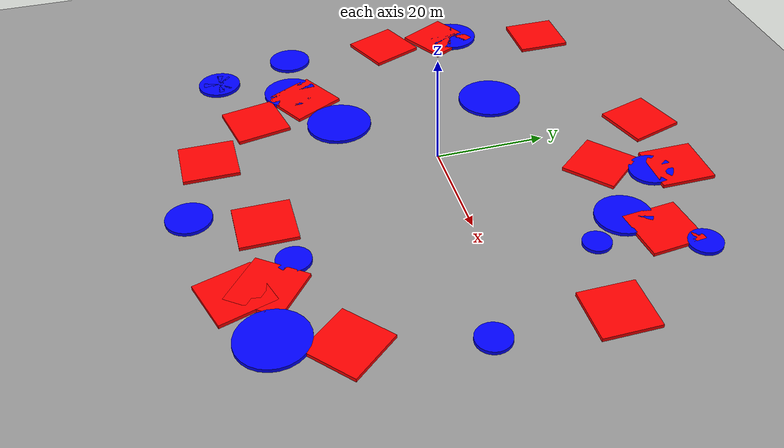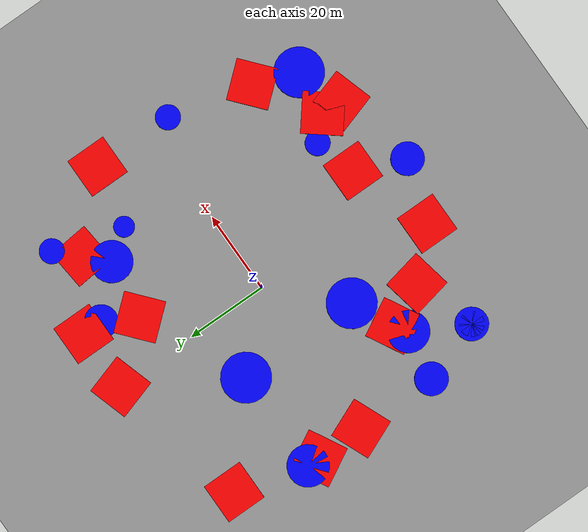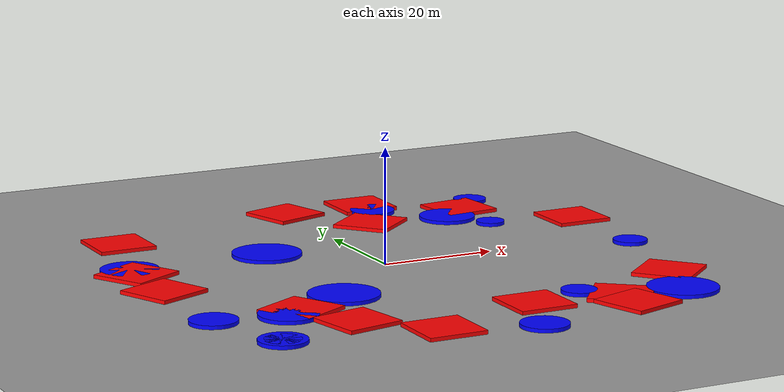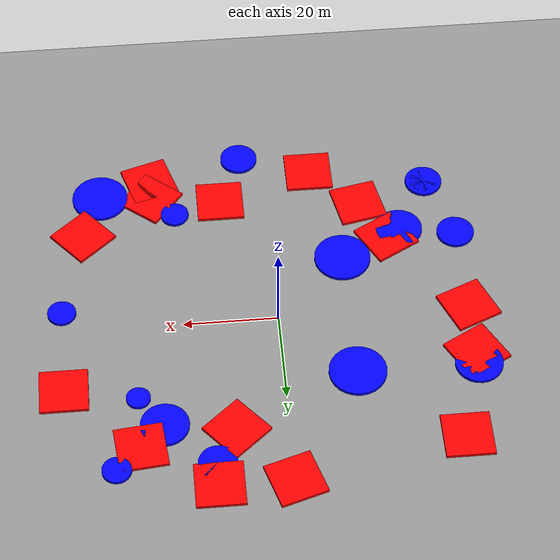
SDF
<sdf version="1.9">
 <world name="default">
  <model name="ground_plane">
   <static>true</static>
   <link name="link">
    <collision name="collision">
     <geometry><plane><normal>0 0 1</normal><size>100 100</size></plane></geometry>
     <surface><contact><collide_without_contact_bitmask>0x01</collide_without_contact_bitmask></contact></surface>
    </collision>
    <visual name="visual">
     <geometry><plane><normal>0 0 1</normal><size>100 100</size></plane></geometry>
     <material><ambient>0.6 0.6 0.6 1</ambient><diffuse>0.6 0.6 0.6 1</diffuse></material>
    </visual>
   </link>
  </model>
  <model name="moving_cylinder_1">
   <pose>25.0 25.0 0 0 0 0</pose>
   <link name="moving_link">
    <gravity>false</gravity>
    <visual name="visual">
     <geometry><cylinder><radius>5.0</radius><length>1.0</length></cylinder></geometry>
     <material><ambient>0 0 1 1</ambient></material>
    </visual>
   </link>
   <motion type="legacy-linear">
    <link_name>moving_link</link_name>
    <direction>0 -1 0</direction>
    <amplitude>1000.5</amplitude>
    <speed>0.5</speed>
   </motion>
  </model>
  <model name="moving_cylinder_2">
   <pose>-15.0 -15.0 0 0 0 0</pose>
   <link name="moving_link">
    <gravity>false</gravity>
    <visual name="visual">
     <geometry><cylinder><radius>6.0</radius><length>1.0</length></cylinder></geometry>
     <material><ambient>0 0 1 1</ambient></material>
    </visual>
   </link>
   <motion type="legacy-linear">
    <link_name>moving_link</link_name>
    <direction>0 1 0</direction>
    <amplitude>1000.5</amplitude>
    <speed>0.5</speed>
   </motion>
  </model>
  <model name="moving_cylinder_3">
   <pose>-35.0 -35.0 0 0 0 0</pose>
   <link name="moving_link">
    <gravity>false</gravity>
    <visual name="visual">
     <geometry><cylinder><radius>4.0</radius><length>1.0</length></cylinder></geometry>
     <material><ambient>0 0 1 1</ambient></material>
    </visual>
   </link>
   <motion type="legacy-linear">
    <link_name>moving_link</link_name>
    <direction>1 0 0</direction>
    <amplitude>1000.5</amplitude>
    <speed>0.5</speed>
   </motion>
  </model>
  <model name="moving_cylinder_4">
   <pose>35.0 35.0 0 0 0 0</pose>
   <link name="moving_link">
    <gravity>false</gravity>
    <visual name="visual">
     <geometry><cylinder><radius>3.0</radius><length>1.0</length></cylinder></geometry>
     <material><ambient>0 0 1 1</ambient></material>
    </visual>
   </link>
   <motion type="legacy-circular">
    <link_name>moving_link</link_name>
    <direction>-1 0 0</direction>
    <amplitude>1000.5</amplitude>
    <speed>0.5</speed>
   </motion>
  </model>
  <model name="moving_cylinder_5">
   <pose>-35.0 -35.0 0 0 0 0</pose>
   <link name="moving_link">
    <gravity>false</gravity>
    <visual name="visual">
     <geometry><cylinder><radius>3.0</radius><length>1.0</length></cylinder></geometry>
     <material><ambient>0 0 1 1</ambient></material>
    </visual>
   </link>
   <motion type="legacy-circular">
    <link_name>moving_link</link_name>
    <direction>0 1 0</direction>
    <amplitude>500.5</amplitude>
    <speed>0.8</speed>
   </motion>
  </model>
  <model name="moving_cylinder_6">
   <pose>15.0 35.0 0 0 0 0</pose>
   <link name="moving_link">
    <gravity>false</gravity>
    <visual name="visual">
     <geometry><cylinder><radius>4.0</radius><length>1.0</length></cylinder></geometry>
     <material><ambient>0 0 1 1</ambient></material>
    </visual>
   </link>
   <motion type="legacy-linear">
    <link_name>moving_link</link_name>
    <direction>-1 0 0</direction>
    <amplitude>1000.5</amplitude>
    <speed>0.5</speed>
   </motion>
  </model>
  <model name="moving_box_1">
   <pose>10.0 -33.0 0 0 0 0</pose>
   <link name="moving_link">
    <gravity>false</gravity>
    <visual name="visual">
     <geometry><box><size>10.0 10.0 1.0</size></box></geometry>
     <material><ambient>1 0 0 1</ambient></material>
    </visual>
   </link>
   <motion type="legacy-linear">
    <link_name>moving_link</link_name>
    <direction>0 1 0</direction>
    <amplitude>1000.5</amplitude>
    <speed>0.5</speed>
   </motion>
  </model>
  <model name="moving_box_2">
   <pose>-35.1 32.5 0 0 0 0</pose>
   <link name="moving_link">
    <gravity>false</gravity>
    <visual name="visual">
     <geometry><box><size>10.0 10.0 1.0</size></box></geometry>
     <material><ambient>1 0 0 1</ambient></material>
    </visual>
   </link>
   <motion type="legacy-linear">
    <link_name>moving_link</link_name>
    <direction>0 -1 0</direction>
    <amplitude>1000.5</amplitude>
    <speed>0.5</speed>
   </motion>
  </model>
  <model name="moving_box_3">
   <pose>10.7 27.1 0 0 0 0.707</pose>
   <link name="moving_link">
    <gravity>false</gravity>
    <visual name="visual">
     <geometry><box><size>10.0 10.0 1.0</size></box></geometry>
     <material><ambient>1 0 0 1</ambient></material>
    </visual>
   </link>
   <motion type="legacy-linear">
    <link_name>moving_link</link_name>
    <direction>1 0 0</direction>
    <amplitude>1000.5</amplitude>
    <speed>0.5</speed>
   </motion>
  </model>
  <model name="moving_box_4">
   <pose>40.0 -25.5 0 0 0 0.707</pose>
   <link name="moving_link">
    <gravity>false</gravity>
    <visual name="visual">
     <geometry><box><size>10.0 10.0 1.0</size></box></geometry>
     <material><ambient>1 0 0 1</ambient></material>
    </visual>
   </link>
   <motion type="legacy-linear">
    <link_name>moving_link</link_name>
    <direction>0 1 0</direction>
    <amplitude>1000.5</amplitude>
    <speed>0.5</speed>
   </motion>
  </model>
  <model name="moving_cylinder_7">
   <pose>-40.0 15.0 0 0 0 0</pose>
   <link name="moving_link">
    <gravity>false</gravity>
    <visual name="visual">
     <geometry><cylinder><radius>5.0</radius><length>1.0</length></cylinder></geometry>
     <material><ambient>0 0 1 1</ambient></material>
    </visual>
   </link>
   <motion type="legacy-linear">
    <link_name>moving_link</link_name>
    <direction>1 0 0</direction>
    <amplitude>800.5</amplitude>
    <speed>0.5</speed>
   </motion>
  </model>
  <model name="moving_cylinder_8">
   <pose>5.0 -45.0 0 0 0 0</pose>
   <link name="moving_link">
    <gravity>false</gravity>
    <visual name="visual">
     <geometry><cylinder><radius>4.0</radius><length>1.0</length></cylinder></geometry>
     <material><ambient>0 0 1 1</ambient></material>
    </visual>
   </link>
   <motion type="legacy-linear">
    <link_name>moving_link</link_name>
    <direction>0 1 0</direction>
    <amplitude>900.5</amplitude>
    <speed>0.5</speed>
   </motion>
  </model>
  <model name="moving_cylinder_9">
   <pose>-15.0 15.0 0 0 0 0</pose>
   <link name="moving_link">
    <gravity>false</gravity>
    <visual name="visual">
     <geometry><cylinder><radius>6.0</radius><length>1.0</length></cylinder></geometry>
     <material><ambient>0 0 1 1</ambient></material>
    </visual>
   </link>
   <motion type="legacy-linear">
    <link_name>moving_link</link_name>
    <direction>1 1 0</direction>
    <amplitude>350.5</amplitude>
    <speed>0.5</speed>
   </motion>
  </model>
  <model name="moving_cylinder_10">
   <pose>45.0 -5.0 0 0 0 0</pose>
   <link name="moving_link">
    <gravity>false</gravity>
    <visual name="visual">
     <geometry><cylinder><radius>3.0</radius><length>1.0</length></cylinder></geometry>
     <material><ambient>0 0 1 1</ambient></material>
    </visual>
   </link>
   <motion type="legacy-circular">
    <link_name>moving_link</link_name>
    <direction>0 -1 0</direction>
    <amplitude>600.5</amplitude>
    <speed>0.6</speed>
   </motion>
  </model>
  <model name="moving_box_5">
   <pose>45.0 15.0 0 0 0 0</pose>
   <link name="moving_link">
    <gravity>false</gravity>
    <visual name="visual">
     <geometry><box><size>10.0 10.0 1.0</size></box></geometry>
     <material><ambient>1 0 0 1</ambient></material>
    </visual>
   </link>
   <motion type="legacy-linear">
    <link_name>moving_link</link_name>
    <direction>-1 0 0</direction>
    <amplitude>1000.5</amplitude>
    <speed>0.5</speed>
   </motion>
  </model>
  <model name="moving_box_6">
   <pose>0.0 40.0 0 0 0 0.3</pose>
   <link name="moving_link">
    <gravity>false</gravity>
    <visual name="visual">
     <geometry><box><size>10.0 10.0 1.0</size></box></geometry>
     <material><ambient>1 0 0 1</ambient></material>
    </visual>
   </link>
   <motion type="legacy-linear">
    <link_name>moving_link</link_name>
    <direction>0 -1 0</direction>
    <amplitude>400.5</amplitude>
    <speed>0.4</speed>
   </motion>
  </model>
  <model name="moving_box_7">
   <pose>-25.0 -20.0 0 0 0 0.5</pose>
   <link name="moving_link">
    <gravity>false</gravity>
    <visual name="visual">
     <geometry><box><size>10.0 10.0 1.0</size></box></geometry>
     <material><ambient>1 0 0 1</ambient></material>
    </visual>
   </link>
   <motion type="legacy-linear">
    <link_name>moving_link</link_name>
    <direction>1 0 0</direction>
    <amplitude>750.5</amplitude>
    <speed>0.6</speed>
   </motion>
  </model>
  <model name="moving_box_8">
   <pose>25.0 -35.0 0 0 0 0.9</pose>
   <link name="moving_link">
    <gravity>false</gravity>
    <visual name="visual">
     <geometry><box><size>10.0 10.0 1.0</size></box></geometry>
     <material><ambient>1 0 0 1</ambient></material>
    </visual>
   </link>
   <motion type="legacy-linear">
    <link_name>moving_link</link_name>
    <direction>-1 1 0</direction>
    <amplitude>350.5</amplitude>
    <speed>0.5</speed>
   </motion>
  </model>
  <model name="moving_box_9">
   <pose>-10.0 -40.0 0 0 0 0</pose>
   <link name="moving_link">
    <gravity>false</gravity>
    <visual name="visual">
     <geometry><box><size>10.0 10.0 1.0</size></box></geometry>
     <material><ambient>1 0 0 1</ambient></material>
    </visual>
   </link>
   <motion type="legacy-linear">
    <link_name>moving_link</link_name>
    <direction>0 1 0</direction>
    <amplitude>950.5</amplitude>
    <speed>0.6</speed>
   </motion>
  </model>
  <model name="moving_box_10">
   <pose>-40.0 0.0 0 0 0 0.4</pose>
   <link name="moving_link">
    <gravity>false</gravity>
    <visual name="visual">
     <geometry><box><size>10.0 10.0 1.0</size></box></geometry>
     <material><ambient>1 0 0 1</ambient></material>
    </visual>
   </link>
   <motion type="legacy-linear">
    <link_name>moving_link</link_name>
    <direction>1 0 0</direction>
    <amplitude>350.5</amplitude>
    <speed>0.5</speed>
   </motion>
  </model>
  <model name="moving_cylinder_11">
   <pose>20.0 -30.0 0 0 0 0</pose>
   <link name="moving_link">
    <gravity>false</gravity>
    <visual name="visual">
     <geometry><cylinder><radius>3.0</radius><length>1.0</length></cylinder></geometry>
     <material><ambient>0 0 1 1</ambient></material>
    </visual>
   </link>
   <motion type="legacy-linear">
    <link_name>moving_link</link_name>
    <direction>1 0 0</direction>
    <amplitude>1000.5</amplitude>
    <speed>0.4</speed>
   </motion>
  </model>
  <model name="moving_cylinder_12">
   <pose>-28.0 -22.0 0 0 0 0</pose>
   <link name="moving_link">
    <gravity>false</gravity>
    <visual name="visual">
     <geometry><cylinder><radius>5.0</radius><length>1.0</length></cylinder></geometry>
     <material><ambient>0 0 1 1</ambient></material>
    </visual>
   </link>
   <motion type="legacy-linear">
    <link_name>moving_link</link_name>
    <direction>0 1 0</direction>
    <amplitude>1000.5</amplitude>
    <speed>0.3</speed>
   </motion>
  </model>
  <model name="moving_cylinder_13">
   <pose>30.0 18.0 0 0 0 0</pose>
   <link name="moving_link">
    <gravity>false</gravity>
    <visual name="visual">
     <geometry><cylinder><radius>2.5</radius><length>1.0</length></cylinder></geometry>
     <material><ambient>0 0 1 1</ambient></material>
    </visual>
   </link>
   <motion type="legacy-linear">
    <link_name>moving_link</link_name>
    <direction>-1 0 0</direction>
    <amplitude>1000.5</amplitude>
    <speed>0.6</speed>
   </motion>
  </model>
  <model name="moving_cylinder_14">
   <pose>-40.0 -20.0 0 0 0 0</pose>
   <link name="moving_link">
    <gravity>false</gravity>
    <visual name="visual">
     <geometry><cylinder><radius>4.0</radius><length>1.0</length></cylinder></geometry>
     <material><ambient>0 0 1 1</ambient></material>
    </visual>
   </link>
   <motion type="legacy-circular">
    <link_name>moving_link</link_name>
    <direction>0 -1 0</direction>
    <amplitude>500.5</amplitude>
    <speed>0.7</speed>
   </motion>
  </model>
  <model name="moving_cylinder_15">
   <pose>36.0 -36.0 0 0 0 0</pose>
   <link name="moving_link">
    <gravity>false</gravity>
    <visual name="visual">
     <geometry><cylinder><radius>6.0</radius><length>1.0</length></cylinder></geometry>
     <material><ambient>0 0 1 1</ambient></material>
    </visual>
   </link>
   <motion type="legacy-circular">
    <link_name>moving_link</link_name>
    <direction>1 0 0</direction>
    <amplitude>1000.5</amplitude>
    <speed>0.5</speed>
   </motion>
  </model>
  <model name="moving_box_11">
   <pose>15.0 40.0 0 0 0 0</pose>
   <link name="moving_link">
    <gravity>false</gravity>
    <visual name="visual">
     <geometry><box><size>10.0 10.0 1.0</size></box></geometry>
     <material><ambient>1 0 0 1</ambient></material>
    </visual>
   </link>
   <motion type="legacy-linear">
    <link_name>moving_link</link_name>
    <direction>0 -1 0</direction>
    <amplitude>1000.5</amplitude>
    <speed>0.6</speed>
   </motion>
  </model>
  <model name="moving_box_12">
   <pose>-40.0 12.0 0 0 0 0.5</pose>
   <link name="moving_link">
    <gravity>false</gravity>
    <visual name="visual">
     <geometry><box><size>10.0 10.0 1.0</size></box></geometry>
     <material><ambient>1 0 0 1</ambient></material>
    </visual>
   </link>
   <motion type="legacy-linear">
    <link_name>moving_link</link_name>
    <direction>1 0 0</direction>
    <amplitude>1000.5</amplitude>
    <speed>0.5</speed>
   </motion>
  </model>
  <model name="moving_box_13">
   <pose>25.0 -40.0 0 0 0 0.3</pose>
   <link name="moving_link">
    <gravity>false</gravity>
    <visual name="visual">
     <geometry><box><size>10.0 10.0 1.0</size></box></geometry>
     <material><ambient>1 0 0 1</ambient></material>
    </visual>
   </link>
   <motion type="legacy-linear">
    <link_name>moving_link</link_name>
    <direction>0 1 0</direction>
    <amplitude>1000.5</amplitude>
    <speed>0.4</speed>
   </motion>
  </model>
  <model name="moving_box_14">
   <pose>-20.0 -30.0 0 0 0 0.2</pose>
   <link name="moving_link">
    <gravity>false</gravity>
    <visual name="visual">
     <geometry><box><size>10.0 10.0 1.0</size></box></geometry>
     <material><ambient>1 0 0 1</ambient></material>
    </visual>
   </link>
   <motion type="legacy-linear">
    <link_name>moving_link</link_name>
    <direction>1 0 0</direction>
    <amplitude>1000.5</amplitude>
    <speed>0.45</speed>
   </motion>
  </model>
  <model name="moving_box_15">
   <pose>30.0 30.0 0 0 0 0.1</pose>
   <link name="moving_link">
    <gravity>false</gravity>
    <visual name="visual">
     <geometry><box><size>10.0 10.0 1.0</size></box></geometry>
     <material><ambient>1 0 0 1</ambient></material>
    </visual>
   </link>
   <motion type="legacy-linear">
    <link_name>moving_link</link_name>
    <direction>0 -1 0</direction>
    <amplitude>1000.5</amplitude>
    <speed>0.55</speed>
   </motion>
  </model>
 </world>
</sdf>
